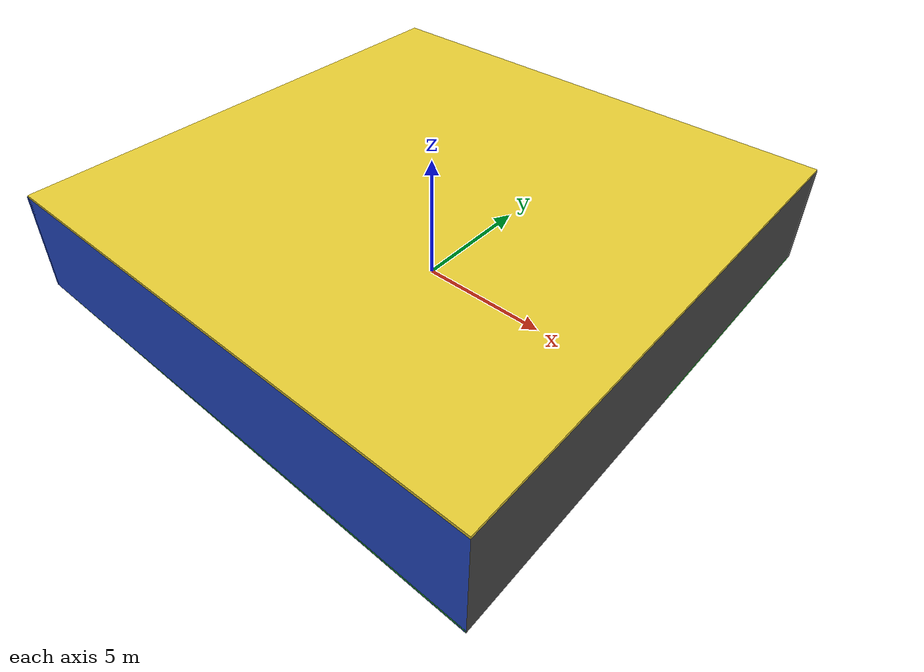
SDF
<sdf version="1.4">
 <world name="default">
  <physics type="ode">
   <max_step_size>0.001</max_step_size>
   <real_time_factor>1</real_time_factor>
   <real_time_update_rate>1000</real_time_update_rate>
   <gravity>0 0 -9.8</gravity>
  </physics>
  <scene><ambient>0.4 0.4 0.4 1</ambient><background>0.7 0.7 0.7 1</background><shadows>1</shadows></scene>
  <model name="Surrounding">
   <static>1</static>
   <link name="Ceiling">
    <collision name="Ceiling_Collision"><geometry><box><size>20 20 0.1</size></box></geometry></collision>
    <visual name="Ceiling_Visual">
     <geometry><box><size>20 20 0.1</size></box></geometry>
     <material>
      <script><uri>file://media/materials/scripts/gazebo.material</uri><name>Gazebo/ZincYellow</name></script>
     </material>
    </visual>
    <pose>0 0 4.05 0 0 0</pose>
   </link>
   <link name="Wall_South">
    <collision name="Wall_South_Collision">
     <geometry><box><size>20 0 4</size></box></geometry>
     <pose>0 0 2 0 -0 0</pose>
    </collision>
    <visual name="Wall_South_Visual">
     <pose>0 0 2 0 -0 0</pose>
     <geometry><box><size>20 0 4</size></box></geometry>
     <material>
      <script><uri>file://media/materials/scripts/gazebo.material</uri><name>Gazebo/BlueGlow</name></script>
     </material>
    </visual>
    <velocity_decay><linear>0</linear><angular>0</angular></velocity_decay>
    <pose>0 -10 0 0 -0 0</pose>
   </link>
   <link name="Wall_East">
    <collision name="Wall_21_Collision">
     <geometry><box><size>20 0 4</size></box></geometry>
     <pose>0 0 2 0 -0 0</pose>
    </collision>
    <visual name="Wall_21_Visual">
     <pose>0 0 2 0 -0 0</pose>
     <geometry><box><size>20 0 4</size></box></geometry>
     <material>
      <script><uri>file://media/materials/scripts/gazebo.material</uri><name>Gazebo/DarkGrey</name></script>
     </material>
    </visual>
    <velocity_decay><linear>0</linear><angular>0</angular></velocity_decay>
    <pose>10 0 0 0 -0 1.5708</pose>
   </link>
   <link name="Wall_North">
    <collision name="Wall_22_Collision">
     <geometry><box><size>20 0.2 4</size></box></geometry>
     <pose>0 0 2 0 -0 0</pose>
    </collision>
    <visual name="Wall_22_Visual">
     <pose>0 0 2 0 -0 0</pose>
     <geometry><box><size>20 0.2 4</size></box></geometry>
     <material>
      <script><uri>file://media/materials/scripts/gazebo.material</uri><name>Gazebo/Black</name></script>
     </material>
    </visual>
    <velocity_decay><linear>0</linear><angular>0</angular></velocity_decay>
    <pose>0 10 0 0 -0 0</pose>
   </link>
   <link name="Wall_West">
    <collision name="Wall_23_Collision">
     <geometry><box><size>20 0.2 4</size></box></geometry>
     <pose>0 0 2 0 -0 0</pose>
    </collision>
    <visual name="Wall_23_Visual">
     <pose>0 0 2 0 -0 0</pose>
     <geometry><box><size>20 0.2 4</size></box></geometry>
     <material>
      <script><uri>file://media/materials/scripts/gazebo.material</uri><name>Gazebo/BlueGlow</name></script>
     </material>
    </visual>
    <velocity_decay><linear>0</linear><angular>0</angular></velocity_decay>
    <pose>-10 0 0 0 0 -1.5708</pose>
   </link>
   <link name="Ground_link">
    <collision name="collision">
     <pose>0 0 .05 0 -0 0</pose>
     <geometry><box><size>20 20 0.1</size></box></geometry>
    </collision>
    <visual name="visual">
     <pose>0 0 .05 0 -0 0</pose>
     <geometry><box><size>20 20 0.1</size></box></geometry>
     <material>
      <script><uri>file://media/materials/scripts/gazebo.material</uri><name>Gazebo/Green</name></script>
     </material>
    </visual>
   </link>
   <static>1</static>
  </model>
  <spherical_coordinates>
   <surface_model>EARTH_WGS84</surface_model>
   <latitude_deg>0</latitude_deg>
   <longitude_deg>0</longitude_deg>
   <elevation>0</elevation>
   <heading_deg>0</heading_deg>
  </spherical_coordinates>
  <light name="lightball_0" type="diffuse">
   <diffuse>0.8 0.8 0.8 1</diffuse>
   <specular>0.2 0.2 0.2 1</specular>
   <attenuation>
    <range>100</range>
    <constant>0.7</constant>
    <linear>0.01</linear>
    <quadratic>0.001</quadratic>
   </attenuation>
   <direction>-0.5 0.1 -0.9</direction>
   <pose>-7.01353486221 2.67648865935 2.44409164518 0 0 0</pose>
  </light>
  <light name="lightball_1" type="diffuse">
   <diffuse>0.8 0.8 0.8 1</diffuse>
   <specular>0.2 0.2 0.2 1</specular>
   <attenuation>
    <range>100</range>
    <constant>0.7</constant>
    <linear>0.01</linear>
    <quadratic>0.001</quadratic>
   </attenuation>
   <direction>-0.5 0.1 -0.9</direction>
   <pose>1.04676782341 -4.65405778781 0.901204546933 0 0 0</pose>
  </light>
  <light name="lightball_2" type="diffuse">
   <diffuse>0.8 0.8 0.8 1</diffuse>
   <specular>0.2 0.2 0.2 1</specular>
   <attenuation>
    <range>100</range>
    <constant>0.7</constant>
    <linear>0.01</linear>
    <quadratic>0.001</quadratic>
   </attenuation>
   <direction>-0.5 0.1 -0.9</direction>
   <pose>4.3508858383 -4.70445413963 3.65143162518 0 0 0</pose>
  </light>
  <light name="lightball_3" type="diffuse">
   <diffuse>0.8 0.8 0.8 1</diffuse>
   <specular>0.2 0.2 0.2 1</specular>
   <attenuation>
    <range>100</range>
    <constant>0.7</constant>
    <linear>0.01</linear>
    <quadratic>0.001</quadratic>
   </attenuation>
   <direction>-0.5 0.1 -0.9</direction>
   <pose>0.504503484275 4.55555569341 1.54923707926 0 0 0</pose>
  </light>
  <light name="lightball_4" type="diffuse">
   <diffuse>0.8 0.8 0.8 1</diffuse>
   <specular>0.2 0.2 0.2 1</specular>
   <attenuation>
    <range>100</range>
    <constant>0.7</constant>
    <linear>0.01</linear>
    <quadratic>0.001</quadratic>
   </attenuation>
   <direction>-0.5 0.1 -0.9</direction>
   <pose>-0.723709553329 7.47867975468 2.59483478579 0 0 0</pose>
  </light>
  <light name="lightball_5" type="diffuse">
   <diffuse>0.8 0.8 0.8 1</diffuse>
   <specular>0.2 0.2 0.2 1</specular>
   <attenuation>
    <range>100</range>
    <constant>0.7</constant>
    <linear>0.01</linear>
    <quadratic>0.001</quadratic>
   </attenuation>
   <direction>-0.5 0.1 -0.9</direction>
   <pose>8.5918738676 -6.63534625916 1.82967129381 0 0 0</pose>
  </light>
  <light name="lightball_6" type="diffuse">
   <diffuse>0.8 0.8 0.8 1</diffuse>
   <specular>0.2 0.2 0.2 1</specular>
   <attenuation>
    <range>100</range>
    <constant>0.7</constant>
    <linear>0.01</linear>
    <quadratic>0.001</quadratic>
   </attenuation>
   <direction>-0.5 0.1 -0.9</direction>
   <pose>-9.93064332411 3.23983380093 2.10252335492 0 0 0</pose>
  </light>
  <light name="lightball_7" type="diffuse">
   <diffuse>0.8 0.8 0.8 1</diffuse>
   <specular>0.2 0.2 0.2 1</specular>
   <attenuation>
    <range>100</range>
    <constant>0.7</constant>
    <linear>0.01</linear>
    <quadratic>0.001</quadratic>
   </attenuation>
   <direction>-0.5 0.1 -0.9</direction>
   <pose>3.92865865323 4.22082835239 0.691749655048 0 0 0</pose>
  </light>
  <light name="lightball_8" type="diffuse">
   <diffuse>0.8 0.8 0.8 1</diffuse>
   <specular>0.2 0.2 0.2 1</specular>
   <attenuation>
    <range>100</range>
    <constant>0.7</constant>
    <linear>0.01</linear>
    <quadratic>0.001</quadratic>
   </attenuation>
   <direction>-0.5 0.1 -0.9</direction>
   <pose>-5.66879821718 -0.603739466991 1.58891195361 0 0 0</pose>
  </light>
  <light name="lightball_9" type="diffuse">
   <diffuse>0.8 0.8 0.8 1</diffuse>
   <specular>0.2 0.2 0.2 1</specular>
   <attenuation>
    <range>100</range>
    <constant>0.7</constant>
    <linear>0.01</linear>
    <quadratic>0.001</quadratic>
   </attenuation>
   <direction>-0.5 0.1 -0.9</direction>
   <pose>9.55763658745 -6.04310422095 2.51019278627 0 0 0</pose>
  </light>
  <light name="lightball_10" type="diffuse">
   <diffuse>0.8 0.8 0.8 1</diffuse>
   <specular>0.2 0.2 0.2 1</specular>
   <attenuation>
    <range>100</range>
    <constant>0.7</constant>
    <linear>0.01</linear>
    <quadratic>0.001</quadratic>
   </attenuation>
   <direction>-0.5 0.1 -0.9</direction>
   <pose>3.25629907343 4.43423117986 2.43519270443 0 0 0</pose>
  </light>
  <light name="lightball_11" type="diffuse">
   <diffuse>0.8 0.8 0.8 1</diffuse>
   <specular>0.2 0.2 0.2 1</specular>
   <attenuation>
    <range>100</range>
    <constant>0.7</constant>
    <linear>0.01</linear>
    <quadratic>0.001</quadratic>
   </attenuation>
   <direction>-0.5 0.1 -0.9</direction>
   <pose>-0.00258922854722 5.80823263014 3.39283785228 0 0 0</pose>
  </light>
  <light name="lightball_12" type="diffuse">
   <diffuse>0.8 0.8 0.8 1</diffuse>
   <specular>0.2 0.2 0.2 1</specular>
   <attenuation>
    <range>100</range>
    <constant>0.7</constant>
    <linear>0.01</linear>
    <quadratic>0.001</quadratic>
   </attenuation>
   <direction>-0.5 0.1 -0.9</direction>
   <pose>-9.4035317089 5.25940331609 2.10950205146 0 0 0</pose>
  </light>
  <include><uri>model://table</uri><pose>2.37577150097 6.64306327547 0 0 0 1.66823640163</pose></include>
  <include>
   <uri>model://construction_cone</uri>
   <pose>4.24965864751 2.45763291054 0 0 0 0.956264580208</pose>
  </include>
  <include><uri>model://table</uri><pose>6.84781567782 -3.32238095624 0 0 0 0.303146607759</pose></include>
 </world>
</sdf>

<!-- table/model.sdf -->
<sdf version="1.5">
  <model name="table">
    <static>true</static>
    <link name="link">
      <collision name="surface">
        <pose>0 0 1.0 0 0 0</pose>
        <geometry>
          <box>
            <size>1.5 0.8 0.03</size>
          </box>
        </geometry>
        <surface>
          <friction>
            <ode>
              <mu>0.6</mu>
              <mu2>0.6</mu2>
            </ode>
          </friction>
        </surface>
      </collision>
      <visual name="visual1">
        <pose>0 0 1.0 0 0 0</pose>
        <geometry>
          <box>
            <size>1.5 0.8 0.03</size>
          </box>
        </geometry>
        <material>
          <script>
            <uri>model://media/materials/scripts/gazebo.material</uri>
            <name>Gazebo/Wood</name>
          </script>
        </material>
      </visual>
      <collision name="front_left_leg">
        <pose>0.68 0.38 0.5 0 0 0</pose>
        <geometry>
          <cylinder>
            <radius>0.02</radius>
            <length>1.0</length>
          </cylinder>
        </geometry>
      </collision>
      <visual name="front_left_leg">
        <pose>0.68 0.38 0.5 0 0 0</pose>
        <geometry>
          <cylinder>
            <radius>0.02</radius>
            <length>1.0</length>
          </cylinder>
        </geometry>
        <material>
          <script>
            <uri>model://media/materials/scripts/gazebo.material</uri>
            <name>Gazebo/Grey</name>
          </script>
        </material>
      </visual>
      <collision name="front_right_leg">
        <pose>0.68 -0.38 0.5 0 0 0</pose>
        <geometry>
          <cylinder>
            <radius>0.02</radius>
            <length>1.0</length>
          </cylinder>
        </geometry>
      </collision>
      <visual name="front_right_leg">
        <pose>0.68 -0.38 0.5 0 0 0</pose>
        <geometry>
          <cylinder>
            <radius>0.02</radius>
            <length>1.0</length>
          </cylinder>
        </geometry>
        <material>
          <script>
            <uri>model://media/materials/scripts/gazebo.material</uri>
            <name>Gazebo/Grey</name>
          </script>
        </material>
      </visual>
      <collision name="back_right_leg">
        <pose>-0.68 -0.38 0.5 0 0 0</pose>
        <geometry>
          <cylinder>
            <radius>0.02</radius>
            <length>1.0</length>
          </cylinder>
        </geometry>
      </collision>
      <visual name="back_right_leg">
        <pose>-0.68 -0.38 0.5 0 0 0</pose>
        <geometry>
          <cylinder>
            <radius>0.02</radius>
            <length>1.0</length>
          </cylinder>
        </geometry>
        <material>
          <script>
            <uri>model://media/materials/scripts/gazebo.material</uri>
            <name>Gazebo/Grey</name>
          </script>
        </material>
      </visual>
      <collision name="back_left_leg">
        <pose>-0.68 0.38 0.5 0 0 0</pose>
        <geometry>
          <cylinder>
            <radius>0.02</radius>
            <length>1.0</length>
          </cylinder>
        </geometry>
      </collision>
      <visual name="back_left_leg">
        <pose>-0.68 0.38 0.5 0 0 0</pose>
        <geometry>
          <cylinder>
            <radius>0.02</radius>
            <length>1.0</length>
          </cylinder>
        </geometry>
        <material>
          <script>
            <uri>model://media/materials/scripts/gazebo.material</uri>
            <name>Gazebo/Grey</name>
          </script>
        </material>
      </visual>
    </link>
  </model>
</sdf>

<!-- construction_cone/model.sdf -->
<sdf version="1.5">
  <model name="Construction Cone">
    <link name="link">
      <collision name="collision">
        <geometry>
          <mesh>
            <scale>10 10 10</scale>
            <uri>file://isr-testbed/construction_cone/meshes/construction_cone.dae</uri>
          </mesh>
        </geometry>
      </collision>
      <visual name="visual">
        <geometry>
          <mesh>
            <scale>10 10 10</scale>
            <uri>file://isr-testbed/construction_cone/meshes/construction_cone.dae</uri>
          </mesh>
        </geometry>
      </visual>
    </link>
  </model>
</sdf>
